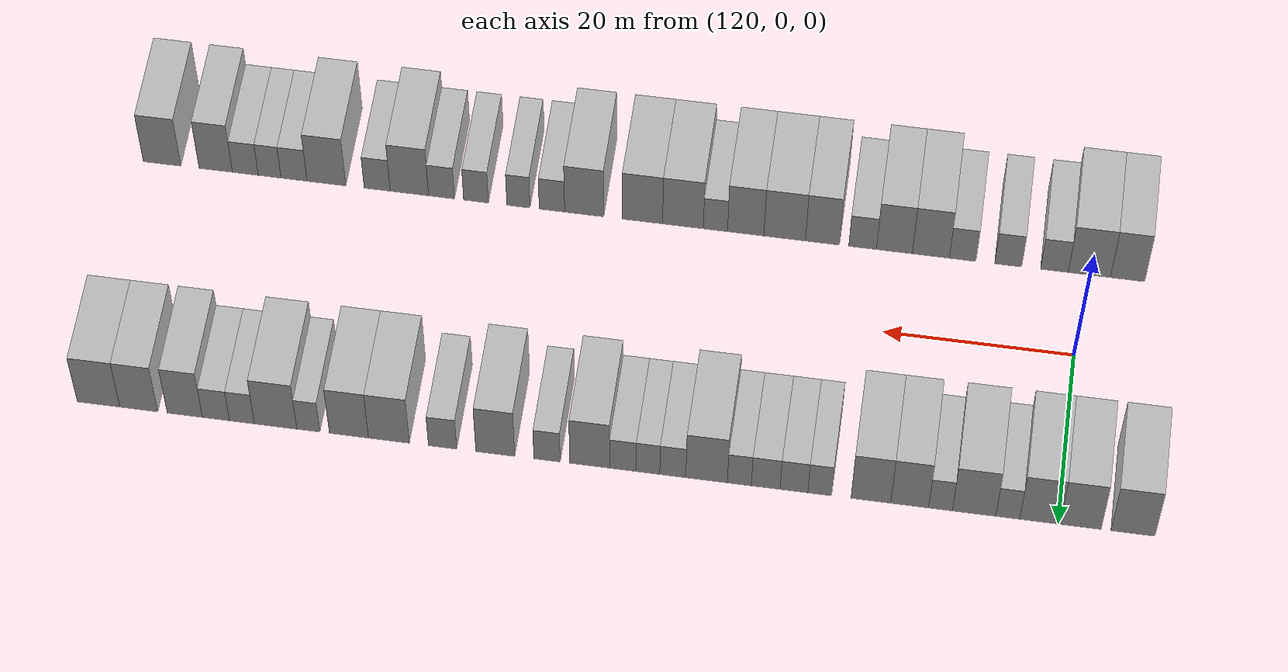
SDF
<sdf version="1.6">
 <world name="default">
  <model name="building_29">
   <static>1</static>
   <pose>112.4363 15.0000 0 0.000000 0.000000 1.570796</pose>
   <link name="link">
    <pose>0 0 4.50 0 0 0</pose>
    <collision name="collision"><geometry><box><size>10.0000 4.4717 9.0000</size></box></geometry></collision>
    <visual name="visual">
     <cast_shadows>0</cast_shadows>
     <geometry><box><size>10.0000 4.4717 9.0000</size></box></geometry>
     <material>
      <script>
       <uri>model://HANNAS_wall/materials/scripts</uri>
       <uri>model://HANNAS_wall/materials/textures</uri>
       <name>vrc/HANNAS_wall</name>
      </script>
     </material>
    </visual>
   </link>
  </model>
  <model name="building_30">
   <static>1</static>
   <pose>117.7677 15.0000 0 0.000000 0.000000 1.570796</pose>
   <link name="link">
    <pose>0 0 4.50 0 0 0</pose>
    <collision name="collision"><geometry><box><size>10.0000 4.1911 9.0000</size></box></geometry></collision>
    <visual name="visual">
     <cast_shadows>0</cast_shadows>
     <geometry><box><size>10.0000 4.1911 9.0000</size></box></geometry>
     <material>
      <script>
       <uri>model://HANNAS_wall/materials/scripts</uri>
       <uri>model://HANNAS_wall/materials/textures</uri>
       <name>vrc/HANNAS_wall</name>
      </script>
     </material>
    </visual>
   </link>
  </model>
  <model name="building_31">
   <static>1</static>
   <pose>121.9125 15.0000 0 0.000000 0.000000 1.570796</pose>
   <link name="link">
    <pose>0 0 4.50 0 0 0</pose>
    <collision name="collision"><geometry><box><size>10.0000 4.0984 9.0000</size></box></geometry></collision>
    <visual name="visual">
     <cast_shadows>0</cast_shadows>
     <geometry><box><size>10.0000 4.0984 9.0000</size></box></geometry>
     <material>
      <script>
       <uri>model://HANNAS_wall/materials/scripts</uri>
       <uri>model://HANNAS_wall/materials/textures</uri>
       <name>vrc/HANNAS_wall</name>
      </script>
     </material>
    </visual>
   </link>
  </model>
  <model name="building_32">
   <static>1</static>
   <pose>125.1835 15.0000 0 0.000000 0.000000 1.570796</pose>
   <link name="link">
    <pose>0 0 3.00 0 0 0</pose>
    <collision name="collision"><geometry><box><size>10.0000 2.4436 6.0000</size></box></geometry></collision>
    <visual name="visual">
     <cast_shadows>0</cast_shadows>
     <geometry><box><size>10.0000 2.4436 6.0000</size></box></geometry>
     <material>
      <script>
       <uri>model://HANNAS_wall/materials/scripts</uri>
       <uri>model://HANNAS_wall/materials/textures</uri>
       <name>vrc/HANNAS_wall</name>
      </script>
     </material>
    </visual>
   </link>
  </model>
  <model name="building_33">
   <static>1</static>
   <pose>128.6230 15.0000 0 0.000000 0.000000 1.570796</pose>
   <link name="link">
    <pose>0 0 4.50 0 0 0</pose>
    <collision name="collision"><geometry><box><size>10.0000 4.4353 9.0000</size></box></geometry></collision>
    <visual name="visual">
     <cast_shadows>0</cast_shadows>
     <geometry><box><size>10.0000 4.4353 9.0000</size></box></geometry>
     <material>
      <script>
       <uri>model://HANNAS_wall/materials/scripts</uri>
       <uri>model://HANNAS_wall/materials/textures</uri>
       <name>vrc/HANNAS_wall</name>
      </script>
     </material>
    </visual>
   </link>
  </model>
  <model name="building_34">
   <static>1</static>
   <pose>132.0591 15.0000 0 0.000000 0.000000 1.570796</pose>
   <link name="link">
    <pose>0 0 3.00 0 0 0</pose>
    <collision name="collision"><geometry><box><size>10.0000 2.4370 6.0000</size></box></geometry></collision>
    <visual name="visual">
     <cast_shadows>0</cast_shadows>
     <geometry><box><size>10.0000 2.4370 6.0000</size></box></geometry>
     <material>
      <script>
       <uri>model://HANNAS_wall/materials/scripts</uri>
       <uri>model://HANNAS_wall/materials/textures</uri>
       <name>vrc/HANNAS_wall</name>
      </script>
     </material>
    </visual>
   </link>
  </model>
  <model name="building_35">
   <static>1</static>
   <pose>135.2093 15.0000 0 0.000000 0.000000 1.570796</pose>
   <link name="link">
    <pose>0 0 4.50 0 0 0</pose>
    <collision name="collision"><geometry><box><size>10.0000 3.8633 9.0000</size></box></geometry></collision>
    <visual name="visual">
     <cast_shadows>0</cast_shadows>
     <geometry><box><size>10.0000 3.8633 9.0000</size></box></geometry>
     <material>
      <script>
       <uri>model://HANNAS_wall/materials/scripts</uri>
       <uri>model://HANNAS_wall/materials/textures</uri>
       <name>vrc/HANNAS_wall</name>
      </script>
     </material>
    </visual>
   </link>
  </model>
  <model name="building_36">
   <static>1</static>
   <pose>139.1776 15.0000 0 0.000000 0.000000 1.570796</pose>
   <link name="link">
    <pose>0 0 4.50 0 0 0</pose>
    <collision name="collision"><geometry><box><size>10.0000 4.0733 9.0000</size></box></geometry></collision>
    <visual name="visual">
     <cast_shadows>0</cast_shadows>
     <geometry><box><size>10.0000 4.0733 9.0000</size></box></geometry>
     <material>
      <script>
       <uri>model://HANNAS_wall/materials/scripts</uri>
       <uri>model://HANNAS_wall/materials/textures</uri>
       <name>vrc/HANNAS_wall</name>
      </script>
     </material>
    </visual>
   </link>
  </model>
  <model name="building_37">
   <static>1</static>
   <pose>144.4337 15.0000 0 0.000000 0.000000 1.570796</pose>
   <link name="link">
    <pose>0 0 3.00 0 0 0</pose>
    <collision name="collision"><geometry><box><size>10.0000 2.4388 6.0000</size></box></geometry></collision>
    <visual name="visual">
     <cast_shadows>0</cast_shadows>
     <geometry><box><size>10.0000 2.4388 6.0000</size></box></geometry>
     <material>
      <script>
       <uri>model://HANNAS_wall/materials/scripts</uri>
       <uri>model://HANNAS_wall/materials/textures</uri>
       <name>vrc/HANNAS_wall</name>
      </script>
     </material>
    </visual>
   </link>
  </model>
  <model name="building_38">
   <static>1</static>
   <pose>147.0817 15.0000 0 0.000000 0.000000 1.570796</pose>
   <link name="link">
    <pose>0 0 3.00 0 0 0</pose>
    <collision name="collision"><geometry><box><size>10.0000 2.8573 6.0000</size></box></geometry></collision>
    <visual name="visual">
     <cast_shadows>0</cast_shadows>
     <geometry><box><size>10.0000 2.8573 6.0000</size></box></geometry>
     <material>
      <script>
       <uri>model://HANNAS_wall/materials/scripts</uri>
       <uri>model://HANNAS_wall/materials/textures</uri>
       <name>vrc/HANNAS_wall</name>
      </script>
     </material>
    </visual>
   </link>
  </model>
  <model name="building_39">
   <static>1</static>
   <pose>149.9892 15.0000 0 0.000000 0.000000 1.570796</pose>
   <link name="link">
    <pose>0 0 3.00 0 0 0</pose>
    <collision name="collision"><geometry><box><size>10.0000 2.9577 6.0000</size></box></geometry></collision>
    <visual name="visual">
     <cast_shadows>0</cast_shadows>
     <geometry><box><size>10.0000 2.9577 6.0000</size></box></geometry>
     <material>
      <script>
       <uri>model://HANNAS_wall/materials/scripts</uri>
       <uri>model://HANNAS_wall/materials/textures</uri>
       <name>vrc/HANNAS_wall</name>
      </script>
     </material>
    </visual>
   </link>
  </model>
  <model name="building_40">
   <static>1</static>
   <pose>152.7050 15.0000 0 0.000000 0.000000 1.570796</pose>
   <link name="link">
    <pose>0 0 3.00 0 0 0</pose>
    <collision name="collision"><geometry><box><size>10.0000 2.4739 6.0000</size></box></geometry></collision>
    <visual name="visual">
     <cast_shadows>0</cast_shadows>
     <geometry><box><size>10.0000 2.4739 6.0000</size></box></geometry>
     <material>
      <script>
       <uri>model://HANNAS_wall/materials/scripts</uri>
       <uri>model://HANNAS_wall/materials/textures</uri>
       <name>vrc/HANNAS_wall</name>
      </script>
     </material>
    </visual>
   </link>
  </model>
  <model name="building_41">
   <static>1</static>
   <pose>156.0827 15.0000 0 0.000000 0.000000 1.570796</pose>
   <link name="link">
    <pose>0 0 4.50 0 0 0</pose>
    <collision name="collision"><geometry><box><size>10.0000 4.2815 9.0000</size></box></geometry></collision>
    <visual name="visual">
     <cast_shadows>0</cast_shadows>
     <geometry><box><size>10.0000 4.2815 9.0000</size></box></geometry>
     <material>
      <script>
       <uri>model://HANNAS_wall/materials/scripts</uri>
       <uri>model://HANNAS_wall/materials/textures</uri>
       <name>vrc/HANNAS_wall</name>
      </script>
     </material>
    </visual>
   </link>
  </model>
  <model name="building_42">
   <static>1</static>
   <pose>159.5707 15.0000 0 0.000000 0.000000 1.570796</pose>
   <link name="link">
    <pose>0 0 3.00 0 0 0</pose>
    <collision name="collision"><geometry><box><size>10.0000 2.6945 6.0000</size></box></geometry></collision>
    <visual name="visual">
     <cast_shadows>0</cast_shadows>
     <geometry><box><size>10.0000 2.6945 6.0000</size></box></geometry>
     <material>
      <script>
       <uri>model://HANNAS_wall/materials/scripts</uri>
       <uri>model://HANNAS_wall/materials/textures</uri>
       <name>vrc/HANNAS_wall</name>
      </script>
     </material>
    </visual>
   </link>
  </model>
  <model name="building_43">
   <static>1</static>
   <pose>162.1420 15.0000 0 0.000000 0.000000 1.570796</pose>
   <link name="link">
    <pose>0 0 3.00 0 0 0</pose>
    <collision name="collision"><geometry><box><size>10.0000 2.4482 6.0000</size></box></geometry></collision>
    <visual name="visual">
     <cast_shadows>0</cast_shadows>
     <geometry><box><size>10.0000 2.4482 6.0000</size></box></geometry>
     <material>
      <script>
       <uri>model://HANNAS_wall/materials/scripts</uri>
       <uri>model://HANNAS_wall/materials/textures</uri>
       <name>vrc/HANNAS_wall</name>
      </script>
     </material>
    </visual>
   </link>
  </model>
  <model name="building_44">
   <static>1</static>
   <pose>164.7349 15.0000 0 0.000000 0.000000 1.570796</pose>
   <link name="link">
    <pose>0 0 3.00 0 0 0</pose>
    <collision name="collision"><geometry><box><size>10.0000 2.7376 6.0000</size></box></geometry></collision>
    <visual name="visual">
     <cast_shadows>0</cast_shadows>
     <geometry><box><size>10.0000 2.7376 6.0000</size></box></geometry>
     <material>
      <script>
       <uri>model://HANNAS_wall/materials/scripts</uri>
       <uri>model://HANNAS_wall/materials/textures</uri>
       <name>vrc/HANNAS_wall</name>
      </script>
     </material>
    </visual>
   </link>
  </model>
  <model name="building_45">
   <static>1</static>
   <pose>168.1659 15.0000 0 0.000000 0.000000 1.570796</pose>
   <link name="link">
    <pose>0 0 4.50 0 0 0</pose>
    <collision name="collision"><geometry><box><size>10.0000 4.1245 9.0000</size></box></geometry></collision>
    <visual name="visual">
     <cast_shadows>0</cast_shadows>
     <geometry><box><size>10.0000 4.1245 9.0000</size></box></geometry>
     <material>
      <script>
       <uri>model://HANNAS_wall/materials/scripts</uri>
       <uri>model://HANNAS_wall/materials/textures</uri>
       <name>vrc/HANNAS_wall</name>
      </script>
     </material>
    </visual>
   </link>
  </model>
  <model name="building_46">
   <static>1</static>
   <pose>172.5894 15.0000 0 0.000000 0.000000 1.570796</pose>
   <link name="link">
    <pose>0 0 3.00 0 0 0</pose>
    <collision name="collision"><geometry><box><size>10.0000 2.7224 6.0000</size></box></geometry></collision>
    <visual name="visual">
     <cast_shadows>0</cast_shadows>
     <geometry><box><size>10.0000 2.7224 6.0000</size></box></geometry>
     <material>
      <script>
       <uri>model://HANNAS_wall/materials/scripts</uri>
       <uri>model://HANNAS_wall/materials/textures</uri>
       <name>vrc/HANNAS_wall</name>
      </script>
     </material>
    </visual>
   </link>
  </model>
  <model name="building_47">
   <static>1</static>
   <pose>177.9685 15.0000 0 0.000000 0.000000 1.570796</pose>
   <link name="link">
    <pose>0 0 4.50 0 0 0</pose>
    <collision name="collision"><geometry><box><size>10.0000 4.0358 9.0000</size></box></geometry></collision>
    <visual name="visual">
     <cast_shadows>0</cast_shadows>
     <geometry><box><size>10.0000 4.0358 9.0000</size></box></geometry>
     <material>
      <script>
       <uri>model://HANNAS_wall/materials/scripts</uri>
       <uri>model://HANNAS_wall/materials/textures</uri>
       <name>vrc/HANNAS_wall</name>
      </script>
     </material>
    </visual>
   </link>
  </model>
  <model name="building_48">
   <static>1</static>
   <pose>183.4565 15.0000 0 0.000000 0.000000 1.570796</pose>
   <link name="link">
    <pose>0 0 3.00 0 0 0</pose>
    <collision name="collision"><geometry><box><size>10.0000 2.9402 6.0000</size></box></geometry></collision>
    <visual name="visual">
     <cast_shadows>0</cast_shadows>
     <geometry><box><size>10.0000 2.9402 6.0000</size></box></geometry>
     <material>
      <script>
       <uri>model://HANNAS_wall/materials/scripts</uri>
       <uri>model://HANNAS_wall/materials/textures</uri>
       <name>vrc/HANNAS_wall</name>
      </script>
     </material>
    </visual>
   </link>
  </model>
  <model name="building_49">
   <static>1</static>
   <pose>189.0600 15.0000 0 0.000000 0.000000 1.570796</pose>
   <link name="link">
    <pose>0 0 4.50 0 0 0</pose>
    <collision name="collision"><geometry><box><size>10.0000 4.2668 9.0000</size></box></geometry></collision>
    <visual name="visual">
     <cast_shadows>0</cast_shadows>
     <geometry><box><size>10.0000 4.2668 9.0000</size></box></geometry>
     <material>
      <script>
       <uri>model://HANNAS_wall/materials/scripts</uri>
       <uri>model://HANNAS_wall/materials/textures</uri>
       <name>vrc/HANNAS_wall</name>
      </script>
     </material>
    </visual>
   </link>
  </model>
  <model name="building_50">
   <static>1</static>
   <pose>193.2329 15.0000 0 0.000000 0.000000 1.570796</pose>
   <link name="link">
    <pose>0 0 4.50 0 0 0</pose>
    <collision name="collision"><geometry><box><size>10.0000 4.0790 9.0000</size></box></geometry></collision>
    <visual name="visual">
     <cast_shadows>0</cast_shadows>
     <geometry><box><size>10.0000 4.0790 9.0000</size></box></geometry>
     <material>
      <script>
       <uri>model://HANNAS_wall/materials/scripts</uri>
       <uri>model://HANNAS_wall/materials/textures</uri>
       <name>vrc/HANNAS_wall</name>
      </script>
     </material>
    </visual>
   </link>
  </model>
  <model name="building_51">
   <static>1</static>
   <pose>197.4810 15.0000 0 0.000000 0.000000 1.570796</pose>
   <link name="link">
    <pose>0 0 3.00 0 0 0</pose>
    <collision name="collision"><geometry><box><size>10.0000 2.4172 6.0000</size></box></geometry></collision>
    <visual name="visual">
     <cast_shadows>0</cast_shadows>
     <geometry><box><size>10.0000 2.4172 6.0000</size></box></geometry>
     <material>
      <script>
       <uri>model://HANNAS_wall/materials/scripts</uri>
       <uri>model://HANNAS_wall/materials/textures</uri>
       <name>vrc/HANNAS_wall</name>
      </script>
     </material>
    </visual>
   </link>
  </model>
  <model name="building_52">
   <static>1</static>
   <pose>200.9141 15.0000 0 0.000000 0.000000 1.570796</pose>
   <link name="link">
    <pose>0 0 4.50 0 0 0</pose>
    <collision name="collision"><geometry><box><size>10.0000 4.4492 9.0000</size></box></geometry></collision>
    <visual name="visual">
     <cast_shadows>0</cast_shadows>
     <geometry><box><size>10.0000 4.4492 9.0000</size></box></geometry>
     <material>
      <script>
       <uri>model://HANNAS_wall/materials/scripts</uri>
       <uri>model://HANNAS_wall/materials/textures</uri>
       <name>vrc/HANNAS_wall</name>
      </script>
     </material>
    </visual>
   </link>
  </model>
  <model name="building_53">
   <static>1</static>
   <pose>204.4451 15.0000 0 0.000000 0.000000 1.570796</pose>
   <link name="link">
    <pose>0 0 3.00 0 0 0</pose>
    <collision name="collision"><geometry><box><size>10.0000 2.6127 6.0000</size></box></geometry></collision>
    <visual name="visual">
     <cast_shadows>0</cast_shadows>
     <geometry><box><size>10.0000 2.6127 6.0000</size></box></geometry>
     <material>
      <script>
       <uri>model://HANNAS_wall/materials/scripts</uri>
       <uri>model://HANNAS_wall/materials/textures</uri>
       <name>vrc/HANNAS_wall</name>
      </script>
     </material>
    </visual>
   </link>
  </model>
  <model name="building_54">
   <static>1</static>
   <pose>207.1741 15.0000 0 0.000000 0.000000 1.570796</pose>
   <link name="link">
    <pose>0 0 3.00 0 0 0</pose>
    <collision name="collision"><geometry><box><size>10.0000 2.8453 6.0000</size></box></geometry></collision>
    <visual name="visual">
     <cast_shadows>0</cast_shadows>
     <geometry><box><size>10.0000 2.8453 6.0000</size></box></geometry>
     <material>
      <script>
       <uri>model://HANNAS_wall/materials/scripts</uri>
       <uri>model://HANNAS_wall/materials/textures</uri>
       <name>vrc/HANNAS_wall</name>
      </script>
     </material>
    </visual>
   </link>
  </model>
  <model name="building_55">
   <static>1</static>
   <pose>210.4482 15.0000 0 0.000000 0.000000 1.570796</pose>
   <link name="link">
    <pose>0 0 4.50 0 0 0</pose>
    <collision name="collision"><geometry><box><size>10.0000 3.7030 9.0000</size></box></geometry></collision>
    <visual name="visual">
     <cast_shadows>0</cast_shadows>
     <geometry><box><size>10.0000 3.7030 9.0000</size></box></geometry>
     <material>
      <script>
       <uri>model://HANNAS_wall/materials/scripts</uri>
       <uri>model://HANNAS_wall/materials/textures</uri>
       <name>vrc/HANNAS_wall</name>
      </script>
     </material>
    </visual>
   </link>
  </model>
  <model name="building_56">
   <static>1</static>
   <pose>215.3000 15.0000 0 0.000000 0.000000 1.570796</pose>
   <link name="link">
    <pose>0 0 4.50 0 0 0</pose>
    <collision name="collision"><geometry><box><size>10.0000 4.0005 9.0000</size></box></geometry></collision>
    <visual name="visual">
     <cast_shadows>0</cast_shadows>
     <geometry><box><size>10.0000 4.0005 9.0000</size></box></geometry>
     <material>
      <script>
       <uri>model://HANNAS_wall/materials/scripts</uri>
       <uri>model://HANNAS_wall/materials/textures</uri>
       <name>vrc/HANNAS_wall</name>
      </script>
     </material>
    </visual>
   </link>
  </model>
  <model name="building_57">
   <static>1</static>
   <pose>219.5422 15.0000 0 0.000000 0.000000 1.570796</pose>
   <link name="link">
    <pose>0 0 4.50 0 0 0</pose>
    <collision name="collision"><geometry><box><size>10.0000 4.4840 9.0000</size></box></geometry></collision>
    <visual name="visual">
     <cast_shadows>0</cast_shadows>
     <geometry><box><size>10.0000 4.4840 9.0000</size></box></geometry>
     <material>
      <script>
       <uri>model://HANNAS_wall/materials/scripts</uri>
       <uri>model://HANNAS_wall/materials/textures</uri>
       <name>vrc/HANNAS_wall</name>
      </script>
     </material>
    </visual>
   </link>
  </model>
  <model name="building_85">
   <static>1</static>
   <pose>115.1576 -15.0000 0 0.000000 0.000000 1.570796</pose>
   <link name="link">
    <pose>0 0 4.50 0 0 0</pose>
    <collision name="collision"><geometry><box><size>10.0000 3.6153 9.0000</size></box></geometry></collision>
    <visual name="visual">
     <cast_shadows>0</cast_shadows>
     <geometry><box><size>10.0000 3.6153 9.0000</size></box></geometry>
     <material>
      <script>
       <uri>model://HANNAS_wall/materials/scripts</uri>
       <uri>model://HANNAS_wall/materials/textures</uri>
       <name>vrc/HANNAS_wall</name>
      </script>
     </material>
    </visual>
   </link>
  </model>
  <model name="building_86">
   <static>1</static>
   <pose>119.2056 -15.0000 0 0.000000 0.000000 1.570796</pose>
   <link name="link">
    <pose>0 0 4.50 0 0 0</pose>
    <collision name="collision"><geometry><box><size>10.0000 4.4806 9.0000</size></box></geometry></collision>
    <visual name="visual">
     <cast_shadows>0</cast_shadows>
     <geometry><box><size>10.0000 4.4806 9.0000</size></box></geometry>
     <material>
      <script>
       <uri>model://HANNAS_wall/materials/scripts</uri>
       <uri>model://HANNAS_wall/materials/textures</uri>
       <name>vrc/HANNAS_wall</name>
      </script>
     </material>
    </visual>
   </link>
  </model>
  <model name="building_87">
   <static>1</static>
   <pose>122.9063 -15.0000 0 0.000000 0.000000 1.570796</pose>
   <link name="link">
    <pose>0 0 3.00 0 0 0</pose>
    <collision name="collision"><geometry><box><size>10.0000 2.9209 6.0000</size></box></geometry></collision>
    <visual name="visual">
     <cast_shadows>0</cast_shadows>
     <geometry><box><size>10.0000 2.9209 6.0000</size></box></geometry>
     <material>
      <script>
       <uri>model://HANNAS_wall/materials/scripts</uri>
       <uri>model://HANNAS_wall/materials/textures</uri>
       <name>vrc/HANNAS_wall</name>
      </script>
     </material>
    </visual>
   </link>
  </model>
  <model name="building_88">
   <static>1</static>
   <pose>127.7978 -15.0000 0 0.000000 0.000000 1.570796</pose>
   <link name="link">
    <pose>0 0 3.00 0 0 0</pose>
    <collision name="collision"><geometry><box><size>10.0000 2.8621 6.0000</size></box></geometry></collision>
    <visual name="visual">
     <cast_shadows>0</cast_shadows>
     <geometry><box><size>10.0000 2.8621 6.0000</size></box></geometry>
     <material>
      <script>
       <uri>model://HANNAS_wall/materials/scripts</uri>
       <uri>model://HANNAS_wall/materials/textures</uri>
       <name>vrc/HANNAS_wall</name>
      </script>
     </material>
    </visual>
   </link>
  </model>
  <model name="building_89">
   <static>1</static>
   <pose>132.6413 -15.0000 0 0.000000 0.000000 1.570796</pose>
   <link name="link">
    <pose>0 0 3.00 0 0 0</pose>
    <collision name="collision"><geometry><box><size>10.0000 2.8248 6.0000</size></box></geometry></collision>
    <visual name="visual">
     <cast_shadows>0</cast_shadows>
     <geometry><box><size>10.0000 2.8248 6.0000</size></box></geometry>
     <material>
      <script>
       <uri>model://HANNAS_wall/materials/scripts</uri>
       <uri>model://HANNAS_wall/materials/textures</uri>
       <name>vrc/HANNAS_wall</name>
      </script>
     </material>
    </visual>
   </link>
  </model>
  <model name="building_90">
   <static>1</static>
   <pose>136.0219 -15.0000 0 0.000000 0.000000 1.570796</pose>
   <link name="link">
    <pose>0 0 4.50 0 0 0</pose>
    <collision name="collision"><geometry><box><size>10.0000 3.9365 9.0000</size></box></geometry></collision>
    <visual name="visual">
     <cast_shadows>0</cast_shadows>
     <geometry><box><size>10.0000 3.9365 9.0000</size></box></geometry>
     <material>
      <script>
       <uri>model://HANNAS_wall/materials/scripts</uri>
       <uri>model://HANNAS_wall/materials/textures</uri>
       <name>vrc/HANNAS_wall</name>
      </script>
     </material>
    </visual>
   </link>
  </model>
  <model name="building_91">
   <static>1</static>
   <pose>139.8984 -15.0000 0 0.000000 0.000000 1.570796</pose>
   <link name="link">
    <pose>0 0 4.50 0 0 0</pose>
    <collision name="collision"><geometry><box><size>10.0000 3.8166 9.0000</size></box></geometry></collision>
    <visual name="visual">
     <cast_shadows>0</cast_shadows>
     <geometry><box><size>10.0000 3.8166 9.0000</size></box></geometry>
     <material>
      <script>
       <uri>model://HANNAS_wall/materials/scripts</uri>
       <uri>model://HANNAS_wall/materials/textures</uri>
       <name>vrc/HANNAS_wall</name>
      </script>
     </material>
    </visual>
   </link>
  </model>
  <model name="building_92">
   <static>1</static>
   <pose>143.2814 -15.0000 0 0.000000 0.000000 1.570796</pose>
   <link name="link">
    <pose>0 0 3.00 0 0 0</pose>
    <collision name="collision"><geometry><box><size>10.0000 2.9494 6.0000</size></box></geometry></collision>
    <visual name="visual">
     <cast_shadows>0</cast_shadows>
     <geometry><box><size>10.0000 2.9494 6.0000</size></box></geometry>
     <material>
      <script>
       <uri>model://HANNAS_wall/materials/scripts</uri>
       <uri>model://HANNAS_wall/materials/textures</uri>
       <name>vrc/HANNAS_wall</name>
      </script>
     </material>
    </visual>
   </link>
  </model>
  <model name="building_93">
   <static>1</static>
   <pose>147.5710 -15.0000 0 0.000000 0.000000 1.570796</pose>
   <link name="link">
    <pose>0 0 4.50 0 0 0</pose>
    <collision name="collision"><geometry><box><size>10.0000 3.6298 9.0000</size></box></geometry></collision>
    <visual name="visual">
     <cast_shadows>0</cast_shadows>
     <geometry><box><size>10.0000 3.6298 9.0000</size></box></geometry>
     <material>
      <script>
       <uri>model://HANNAS_wall/materials/scripts</uri>
       <uri>model://HANNAS_wall/materials/textures</uri>
       <name>vrc/HANNAS_wall</name>
      </script>
     </material>
    </visual>
   </link>
  </model>
  <model name="building_94">
   <static>1</static>
   <pose>151.6131 -15.0000 0 0.000000 0.000000 1.570796</pose>
   <link name="link">
    <pose>0 0 4.50 0 0 0</pose>
    <collision name="collision"><geometry><box><size>10.0000 4.4543 9.0000</size></box></geometry></collision>
    <visual name="visual">
     <cast_shadows>0</cast_shadows>
     <geometry><box><size>10.0000 4.4543 9.0000</size></box></geometry>
     <material>
      <script>
       <uri>model://HANNAS_wall/materials/scripts</uri>
       <uri>model://HANNAS_wall/materials/textures</uri>
       <name>vrc/HANNAS_wall</name>
      </script>
     </material>
    </visual>
   </link>
  </model>
  <model name="building_95">
   <static>1</static>
   <pose>155.7867 -15.0000 0 0.000000 0.000000 1.570796</pose>
   <link name="link">
    <pose>0 0 4.50 0 0 0</pose>
    <collision name="collision"><geometry><box><size>10.0000 3.8929 9.0000</size></box></geometry></collision>
    <visual name="visual">
     <cast_shadows>0</cast_shadows>
     <geometry><box><size>10.0000 3.8929 9.0000</size></box></geometry>
     <material>
      <script>
       <uri>model://HANNAS_wall/materials/scripts</uri>
       <uri>model://HANNAS_wall/materials/textures</uri>
       <name>vrc/HANNAS_wall</name>
      </script>
     </material>
    </visual>
   </link>
  </model>
  <model name="building_96">
   <static>1</static>
   <pose>159.0296 -15.0000 0 0.000000 0.000000 1.570796</pose>
   <link name="link">
    <pose>0 0 3.00 0 0 0</pose>
    <collision name="collision"><geometry><box><size>10.0000 2.5929 6.0000</size></box></geometry></collision>
    <visual name="visual">
     <cast_shadows>0</cast_shadows>
     <geometry><box><size>10.0000 2.5929 6.0000</size></box></geometry>
     <material>
      <script>
       <uri>model://HANNAS_wall/materials/scripts</uri>
       <uri>model://HANNAS_wall/materials/textures</uri>
       <name>vrc/HANNAS_wall</name>
      </script>
     </material>
    </visual>
   </link>
  </model>
  <model name="building_97">
   <static>1</static>
   <pose>162.5105 -15.0000 0 0.000000 0.000000 1.570796</pose>
   <link name="link">
    <pose>0 0 4.50 0 0 0</pose>
    <collision name="collision"><geometry><box><size>10.0000 4.3689 9.0000</size></box></geometry></collision>
    <visual name="visual">
     <cast_shadows>0</cast_shadows>
     <geometry><box><size>10.0000 4.3689 9.0000</size></box></geometry>
     <material>
      <script>
       <uri>model://HANNAS_wall/materials/scripts</uri>
       <uri>model://HANNAS_wall/materials/textures</uri>
       <name>vrc/HANNAS_wall</name>
      </script>
     </material>
    </visual>
   </link>
  </model>
  <model name="building_98">
   <static>1</static>
   <pose>166.8656 -15.0000 0 0.000000 0.000000 1.570796</pose>
   <link name="link">
    <pose>0 0 4.50 0 0 0</pose>
    <collision name="collision"><geometry><box><size>10.0000 4.3411 9.0000</size></box></geometry></collision>
    <visual name="visual">
     <cast_shadows>0</cast_shadows>
     <geometry><box><size>10.0000 4.3411 9.0000</size></box></geometry>
     <material>
      <script>
       <uri>model://HANNAS_wall/materials/scripts</uri>
       <uri>model://HANNAS_wall/materials/textures</uri>
       <name>vrc/HANNAS_wall</name>
      </script>
     </material>
    </visual>
   </link>
  </model>
  <model name="building_99">
   <static>1</static>
   <pose>173.1392 -15.0000 0 0.000000 0.000000 1.570796</pose>
   <link name="link">
    <pose>0 0 4.50 0 0 0</pose>
    <collision name="collision"><geometry><box><size>10.0000 4.2061 9.0000</size></box></geometry></collision>
    <visual name="visual">
     <cast_shadows>0</cast_shadows>
     <geometry><box><size>10.0000 4.2061 9.0000</size></box></geometry>
     <material>
      <script>
       <uri>model://HANNAS_wall/materials/scripts</uri>
       <uri>model://HANNAS_wall/materials/textures</uri>
       <name>vrc/HANNAS_wall</name>
      </script>
     </material>
    </visual>
   </link>
  </model>
  <model name="building_100">
   <static>1</static>
   <pose>176.6139 -15.0000 0 0.000000 0.000000 1.570796</pose>
   <link name="link">
    <pose>0 0 3.00 0 0 0</pose>
    <collision name="collision"><geometry><box><size>10.0000 2.7434 6.0000</size></box></geometry></collision>
    <visual name="visual">
     <cast_shadows>0</cast_shadows>
     <geometry><box><size>10.0000 2.7434 6.0000</size></box></geometry>
     <material>
      <script>
       <uri>model://HANNAS_wall/materials/scripts</uri>
       <uri>model://HANNAS_wall/materials/textures</uri>
       <name>vrc/HANNAS_wall</name>
      </script>
     </material>
    </visual>
   </link>
  </model>
  <model name="building_101">
   <static>1</static>
   <pose>180.2324 -15.0000 0 0.000000 0.000000 1.570796</pose>
   <link name="link">
    <pose>0 0 3.00 0 0 0</pose>
    <collision name="collision"><geometry><box><size>10.0000 2.4936 6.0000</size></box></geometry></collision>
    <visual name="visual">
     <cast_shadows>0</cast_shadows>
     <geometry><box><size>10.0000 2.4936 6.0000</size></box></geometry>
     <material>
      <script>
       <uri>model://HANNAS_wall/materials/scripts</uri>
       <uri>model://HANNAS_wall/materials/textures</uri>
       <name>vrc/HANNAS_wall</name>
      </script>
     </material>
    </visual>
   </link>
  </model>
  <model name="building_102">
   <static>1</static>
   <pose>184.8163 -15.0000 0 0.000000 0.000000 1.570796</pose>
   <link name="link">
    <pose>0 0 3.00 0 0 0</pose>
    <collision name="collision"><geometry><box><size>10.0000 2.6742 6.0000</size></box></geometry></collision>
    <visual name="visual">
     <cast_shadows>0</cast_shadows>
     <geometry><box><size>10.0000 2.6742 6.0000</size></box></geometry>
     <material>
      <script>
       <uri>model://HANNAS_wall/materials/scripts</uri>
       <uri>model://HANNAS_wall/materials/textures</uri>
       <name>vrc/HANNAS_wall</name>
      </script>
     </material>
    </visual>
   </link>
  </model>
  <model name="building_103">
   <static>1</static>
   <pose>188.5600 -15.0000 0 0.000000 0.000000 1.570796</pose>
   <link name="link">
    <pose>0 0 3.00 0 0 0</pose>
    <collision name="collision"><geometry><box><size>10.0000 2.8131 6.0000</size></box></geometry></collision>
    <visual name="visual">
     <cast_shadows>0</cast_shadows>
     <geometry><box><size>10.0000 2.8131 6.0000</size></box></geometry>
     <material>
      <script>
       <uri>model://HANNAS_wall/materials/scripts</uri>
       <uri>model://HANNAS_wall/materials/textures</uri>
       <name>vrc/HANNAS_wall</name>
      </script>
     </material>
    </visual>
   </link>
  </model>
  <model name="building_104">
   <static>1</static>
   <pose>192.0492 -15.0000 0 0.000000 0.000000 1.570796</pose>
   <link name="link">
    <pose>0 0 4.50 0 0 0</pose>
    <collision name="collision"><geometry><box><size>10.0000 4.1653 9.0000</size></box></geometry></collision>
    <visual name="visual">
     <cast_shadows>0</cast_shadows>
     <geometry><box><size>10.0000 4.1653 9.0000</size></box></geometry>
     <material>
      <script>
       <uri>model://HANNAS_wall/materials/scripts</uri>
       <uri>model://HANNAS_wall/materials/textures</uri>
       <name>vrc/HANNAS_wall</name>
      </script>
     </material>
    </visual>
   </link>
  </model>
  <model name="building_105">
   <static>1</static>
   <pose>195.5379 -15.0000 0 0.000000 0.000000 1.570796</pose>
   <link name="link">
    <pose>0 0 3.00 0 0 0</pose>
    <collision name="collision"><geometry><box><size>10.0000 2.8122 6.0000</size></box></geometry></collision>
    <visual name="visual">
     <cast_shadows>0</cast_shadows>
     <geometry><box><size>10.0000 2.8122 6.0000</size></box></geometry>
     <material>
      <script>
       <uri>model://HANNAS_wall/materials/scripts</uri>
       <uri>model://HANNAS_wall/materials/textures</uri>
       <name>vrc/HANNAS_wall</name>
      </script>
     </material>
    </visual>
   </link>
  </model>
  <model name="building_106">
   <static>1</static>
   <pose>201.0516 -15.0000 0 0.000000 0.000000 1.570796</pose>
   <link name="link">
    <pose>0 0 4.50 0 0 0</pose>
    <collision name="collision"><geometry><box><size>10.0000 4.2151 9.0000</size></box></geometry></collision>
    <visual name="visual">
     <cast_shadows>0</cast_shadows>
     <geometry><box><size>10.0000 4.2151 9.0000</size></box></geometry>
     <material>
      <script>
       <uri>model://HANNAS_wall/materials/scripts</uri>
       <uri>model://HANNAS_wall/materials/textures</uri>
       <name>vrc/HANNAS_wall</name>
      </script>
     </material>
    </visual>
   </link>
  </model>
  <model name="building_107">
   <static>1</static>
   <pose>204.5785 -15.0000 0 0.000000 0.000000 1.570796</pose>
   <link name="link">
    <pose>0 0 3.00 0 0 0</pose>
    <collision name="collision"><geometry><box><size>10.0000 2.8388 6.0000</size></box></geometry></collision>
    <visual name="visual">
     <cast_shadows>0</cast_shadows>
     <geometry><box><size>10.0000 2.8388 6.0000</size></box></geometry>
     <material>
      <script>
       <uri>model://HANNAS_wall/materials/scripts</uri>
       <uri>model://HANNAS_wall/materials/textures</uri>
       <name>vrc/HANNAS_wall</name>
      </script>
     </material>
    </visual>
   </link>
  </model>
  <model name="building_108">
   <static>1</static>
   <pose>207.2435 -15.0000 0 0.000000 0.000000 1.570796</pose>
   <link name="link">
    <pose>0 0 3.00 0 0 0</pose>
    <collision name="collision"><geometry><box><size>10.0000 2.4913 6.0000</size></box></geometry></collision>
    <visual name="visual">
     <cast_shadows>0</cast_shadows>
     <geometry><box><size>10.0000 2.4913 6.0000</size></box></geometry>
     <material>
      <script>
       <uri>model://HANNAS_wall/materials/scripts</uri>
       <uri>model://HANNAS_wall/materials/textures</uri>
       <name>vrc/HANNAS_wall</name>
      </script>
     </material>
    </visual>
   </link>
  </model>
  <model name="building_109">
   <static>1</static>
   <pose>209.8958 -15.0000 0 0.000000 0.000000 1.570796</pose>
   <link name="link">
    <pose>0 0 3.00 0 0 0</pose>
    <collision name="collision"><geometry><box><size>10.0000 2.8132 6.0000</size></box></geometry></collision>
    <visual name="visual">
     <cast_shadows>0</cast_shadows>
     <geometry><box><size>10.0000 2.8132 6.0000</size></box></geometry>
     <material>
      <script>
       <uri>model://HANNAS_wall/materials/scripts</uri>
       <uri>model://HANNAS_wall/materials/textures</uri>
       <name>vrc/HANNAS_wall</name>
      </script>
     </material>
    </visual>
   </link>
  </model>
  <model name="building_110">
   <static>1</static>
   <pose>213.1252 -15.0000 0 0.000000 0.000000 1.570796</pose>
   <link name="link">
    <pose>0 0 4.50 0 0 0</pose>
    <collision name="collision"><geometry><box><size>10.0000 3.6455 9.0000</size></box></geometry></collision>
    <visual name="visual">
     <cast_shadows>0</cast_shadows>
     <geometry><box><size>10.0000 3.6455 9.0000</size></box></geometry>
     <material>
      <script>
       <uri>model://HANNAS_wall/materials/scripts</uri>
       <uri>model://HANNAS_wall/materials/textures</uri>
       <name>vrc/HANNAS_wall</name>
      </script>
     </material>
    </visual>
   </link>
  </model>
  <model name="building_111">
   <static>1</static>
   <pose>218.9982 -15.0000 0 0.000000 0.000000 1.570796</pose>
   <link name="link">
    <pose>0 0 4.50 0 0 0</pose>
    <collision name="collision"><geometry><box><size>10.0000 4.1005 9.0000</size></box></geometry></collision>
    <visual name="visual">
     <cast_shadows>0</cast_shadows>
     <geometry><box><size>10.0000 4.1005 9.0000</size></box></geometry>
     <material>
      <script>
       <uri>model://HANNAS_wall/materials/scripts</uri>
       <uri>model://HANNAS_wall/materials/textures</uri>
       <name>vrc/HANNAS_wall</name>
      </script>
     </material>
    </visual>
   </link>
  </model>
 </world>
</sdf>
